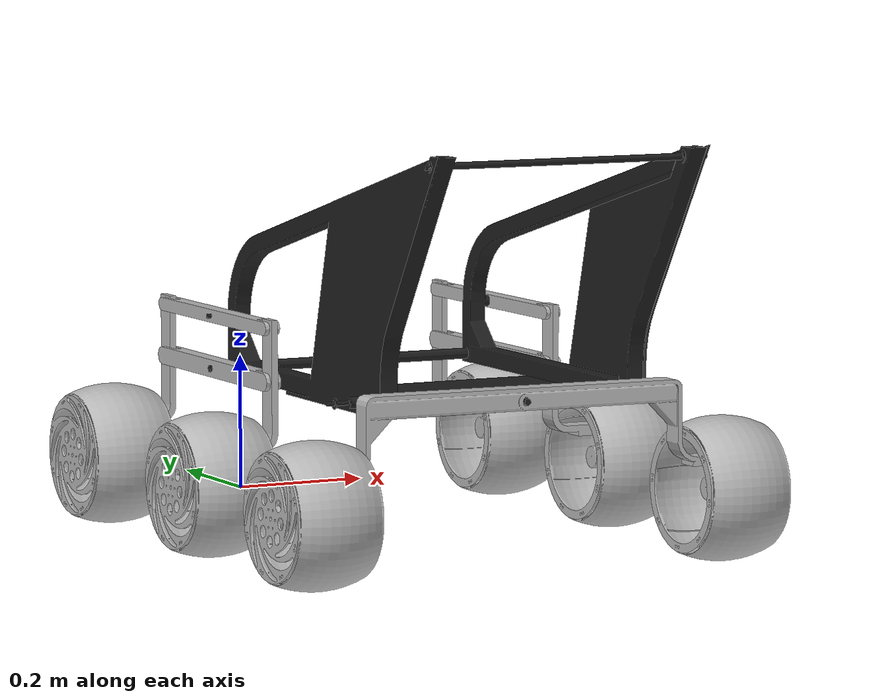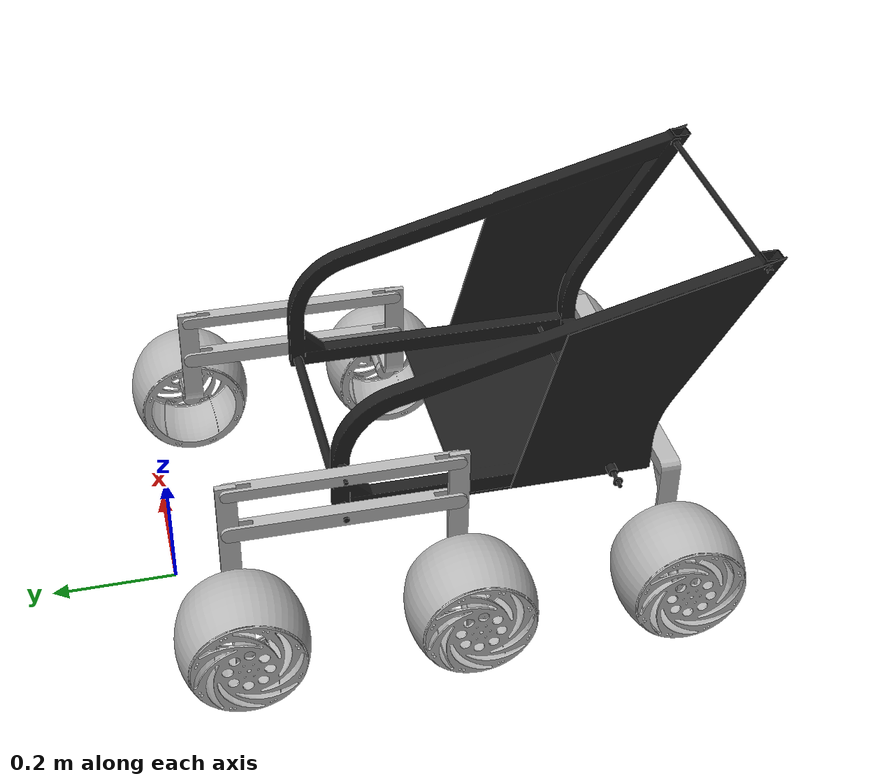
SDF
<?xml version='1.0'?>
<sdf version='1.5'>
  <model name="rmc_robot">
  <static>false</static>
  <link name='base_link'>
      <pose>0 0 0 0 -0 0</pose>
      <inertial>
        <pose>0.0718949 -0.601542 0.318448 0 -0 0</pose>
        <mass>2.92938</mass>
        <inertia>
          <ixx>0.148284</ixx>
          <ixy>7.06981e-05</ixy>
          <ixz>-1.16351e-05</ixz>
          <iyy>0.131066</iyy>
          <iyz>-0.0298493</iyz>
          <izz>0.188823</izz>
        </inertia>
      </inertial>
      <collision name='base_link_collision'>
        <pose>0 0 0 0 -0 0</pose>
        <geometry>
          <mesh>
            <scale>1 1 1</scale>
            <uri>model://rmc_simulation/meshes/base_link.STL</uri>
          </mesh>
        </geometry>
      </collision>
      <visual name='base_link_visual'>
        <pose>0 0 0 0 -0 0</pose>
        <geometry>
          <mesh>
            <scale>1 1 1</scale>
            <uri>model://rmc_simulation/meshes/base_link.STL</uri>
          </mesh>
        </geometry>
	<material>
          <script>
            <uri>file://media/materials/scripts/gazebo.material</uri>
            <name>Gazebo/Black</name>
          </script>
        </material>
      </visual>
      <velocity_decay>
        <linear>0</linear>
        <angular>0</angular>
      </velocity_decay>
    </link>

    <link name='left_bot_link'>
      <pose>-0.140869 -0.255808 0.217656 1.5708 -0 0</pose>
      <inertial>
        <pose>-0.0111125 -2.77556e-17 0 0 -0 0</pose>
        <mass>0.188515</mass>
        <inertia>
          <ixx>0.0019175</ixx>
          <ixy>4.77528e-22</ixy>
          <ixz>1.41435e-20</ixz>
          <iyy>0.00191594</iyy>
          <iyz>4.20247e-21</iyz>
          <izz>1.85554e-05</izz>
        </inertia>
      </inertial>
      <collision name='left_bot_link_collision'>
        <pose>0 0 0 0 -0 0</pose>
        <geometry>
          <mesh>
            <scale>1 1 1</scale>
            <uri>model://rmc_simulation/meshes/left_bot_link.STL</uri>
          </mesh>
        </geometry>
      </collision>
      <visual name='left_bot_link_visual'>
        <pose>0 0 0 0 -0 0</pose>
        <geometry>
          <mesh>
            <scale>1 1 1</scale>
            <uri>model://rmc_simulation/meshes/left_bot_link.STL</uri>
          </mesh>
        </geometry>
      </visual>
      <velocity_decay>
        <linear>0</linear>
        <angular>0</angular>
      </velocity_decay>
    </link>

    <joint name='left_bot_joint' type='revolute'>
      <child>left_bot_link</child>
      <parent>base_link</parent>
      <axis>
        <xyz>-1 0 0</xyz>
        <limit>
          <lower>-1e+16</lower>
          <upper>1e+16</upper>
        </limit>
        <dynamics>
          <spring_reference>0</spring_reference>
          <spring_stiffness>0</spring_stiffness>
        </dynamics>
        <use_parent_model_frame>1</use_parent_model_frame>
      </axis>
    </joint>

    <link name='left_bot_back_link'>
      <pose>-0.163094 -0.433608 0.217656 1.5708 -3.44169e-15 1.5708</pose>
      <inertial>
        <pose>1.92853e-05 -0.0863283 -0.0548204 0 -0 0</pose>
        <mass>0.205852</mass>
        <inertia>
          <ixx>0.00120413</ixx>
          <ixy>-1.40154e-07</ixy>
          <ixz>-1.2706e-07</ixz>
          <iyy>0.000482538</iyy>
          <iyz>0.000461297</iyz>
          <izz>0.000755248</izz>
        </inertia>
      </inertial>
      <collision name='left_bot_back_link_collision'>
        <pose>0 0 0 0 -0 0</pose>
        <geometry>
          <mesh>
            <scale>1 1 1</scale>
            <uri>model://rmc_simulation/meshes/left_bot_back_link.STL</uri>
          </mesh>
        </geometry>
      </collision>
      <visual name='left_bot_back_link_visual'>
        <pose>0 0 0 0 -0 0</pose>
        <geometry>
          <mesh>
            <scale>1 1 1</scale>
            <uri>model://rmc_simulation/meshes/left_bot_back_link.STL</uri>
          </mesh>
        </geometry>
      </visual>
      <velocity_decay>
        <linear>0</linear>
        <angular>0</angular>
      </velocity_decay>
    </link>

    <joint name='left_bot_back_joint' type='revolute'>
      <child>left_bot_back_link</child>
      <parent>left_bot_link</parent>
      <axis>
        <xyz>-1 -3.44169e-15 1.11022e-16</xyz>
        <limit>
          <lower>-1e+16</lower>
          <upper>1e+16</upper>
        </limit>
        <dynamics>
          <spring_reference>0</spring_reference>
          <spring_stiffness>0</spring_stiffness>
        </dynamics>
        <use_parent_model_frame>1</use_parent_model_frame>
      </axis>
    </joint>

<link name='left_mid_wheel_link'>
      <pose>-0.179282 -0.433574 0.077831 0.785403 1.57079 -0.785403</pose>
      <inertial>
        <pose>-7.307e-12 -0.0707952 -1.95886e-07 0 -0 0</pose>
        <mass>0.687646</mass>
        <inertia>
          <ixx>0.00410397</ixx>
          <ixy>1.97154e-13</ixy>
          <ixz>1.06916e-14</ixz>
          <iyy>0.00552463</iyy>
          <iyz>5.39169e-09</iyz>
          <izz>0.00410397</izz>
        </inertia>
      </inertial>
      <collision name='left_mid_wheel_link_collision'>
        <pose>0 0 0 0 -0 0</pose>
        <geometry>
          <mesh>
            <scale>1 1 1</scale>
            <uri>model://rmc_simulation/meshes/left_mid_wheel_link.STL</uri>
          </mesh>
        </geometry>
      </collision>
      <visual name='left_mid_wheel_link_visual'>
        <pose>0 0 0 0 -0 0</pose>
        <geometry>
          <mesh>
            <scale>1 1 1</scale>
            <uri>model://rmc_simulation/meshes/left_mid_wheel_link.STL</uri>
          </mesh>
        </geometry>
      </visual>
      <velocity_decay>
        <linear>0</linear>
        <angular>0</angular>
      </velocity_decay>
    </link>
    <joint name='left_mid_wheel_joint' type='revolute'>
      <child>left_mid_wheel_link</child>
      <parent>left_bot_back_link</parent>
      <axis>
        <xyz>-1 -1.11022e-16 1.11022e-16</xyz>
        <limit>
          <lower>-1e+16</lower>
          <upper>1e+16</upper>
        </limit>
        <dynamics>
          <spring_reference>0</spring_reference>
          <spring_stiffness>0</spring_stiffness>
        </dynamics>
        <use_parent_model_frame>1</use_parent_model_frame>
      </axis>
    </joint>

    <link name='left_bot_front_link'>
      <pose>-0.147219 -0.0780078 0.217656 1.5708 -3.44169e-15 1.5708</pose>
      <inertial>
        <pose>1.92853e-05 -0.0863283 -0.0706954 0 -0 0</pose>
        <mass>0.205852</mass>
        <inertia>
          <ixx>0.00120413</ixx>
          <ixy>-1.40154e-07</ixy>
          <ixz>-1.2706e-07</ixz>
          <iyy>0.000482538</iyy>
          <iyz>0.000461297</iyz>
          <izz>0.000755248</izz>
        </inertia>
      </inertial>
      <collision name='left_bot_front_link_collision'>
        <pose>0 0 0 0 -0 0</pose>
        <geometry>
          <mesh>
            <scale>1 1 1</scale>
            <uri>model://rmc_simulation/meshes/left_bot_front_link.STL</uri>
          </mesh>
        </geometry>
      </collision>
      <visual name='left_bot_front_link_visual'>
        <pose>0 0 0 0 -0 0</pose>
        <geometry>
          <mesh>
            <scale>1 1 1</scale>
            <uri>model://rmc_simulation/meshes/left_bot_front_link.STL</uri>
          </mesh>
        </geometry>
      </visual>
      <velocity_decay>
        <linear>0</linear>
        <angular>0</angular>
      </velocity_decay>
    </link>
    <joint name='left_bot_front_joiny' type='revolute'>
      <child>left_bot_front_link</child>
      <parent>left_bot_link</parent>
      <axis>
        <xyz>-1 -3.44169e-15 1.11022e-16</xyz>
        <limit>
          <lower>-1e+16</lower>
          <upper>1e+16</upper>
        </limit>
        <dynamics>
          <spring_reference>0</spring_reference>
          <spring_stiffness>0</spring_stiffness>
        </dynamics>
        <use_parent_model_frame>1</use_parent_model_frame>
      </axis>
    </joint>

    <link name='left_front_wheel_link'>
      <pose>-0.179282 -0.077974 0.077831 0.785403 1.57079 -0.785403</pose>
      <inertial>
        <pose>-7.30697e-12 -0.0707952 -1.95886e-07 0 -0 0</pose>
        <mass>0.687646</mass>
        <inertia>
          <ixx>0.00410397</ixx>
          <ixy>1.97154e-13</ixy>
          <ixz>1.06921e-14</ixz>
          <iyy>0.00552463</iyy>
          <iyz>5.39169e-09</iyz>
          <izz>0.00410397</izz>
        </inertia>
      </inertial>
      <collision name='left_front_wheel_link_collision'>
        <pose>0 0 0 0 -0 0</pose>
        <geometry>
          <mesh>
            <scale>1 1 1</scale>
            <uri>model://rmc_simulation/meshes/left_front_wheel_link.STL</uri>
          </mesh>
        </geometry>
      </collision>
      <visual name='left_front_wheel_link_visual'>
        <pose>0 0 0 0 -0 0</pose>
        <geometry>
          <mesh>
            <scale>1 1 1</scale>
            <uri>model://rmc_simulation/meshes/left_front_wheel_link.STL</uri>
          </mesh>
        </geometry>
      </visual>
      <velocity_decay>
        <linear>0</linear>
        <angular>0</angular>
      </velocity_decay>
    </link>
    <joint name='left_front_wheel_joint' type='revolute'>
      <child>left_front_wheel_link</child>
      <parent>left_bot_front_link</parent>
      <axis>
        <xyz>-1 -1.11022e-16 1.11022e-16</xyz>
        <limit>
          <lower>-1e+16</lower>
          <upper>1e+16</upper>
        </limit>
        <dynamics>
          <spring_reference>0</spring_reference>
          <spring_stiffness>0</spring_stiffness>
        </dynamics>
        <use_parent_model_frame>1</use_parent_model_frame>
      </axis>
    </joint>

    <link name='left_top_link'>
      <pose>-0.140869 -0.255808 0.293856 1.5708 -0 0</pose>
      <inertial>
        <pose>-0.0111125 -5.55112e-17 0 0 -0 0</pose>
        <mass>0.140249</mass>
        <inertia>
          <ixx>0.00137938</ixx>
          <ixy>-1.28023e-22</ixy>
          <ixz>7.25851e-21</ixz>
          <iyy>0.00138148</iyy>
          <iyz>4.32209e-22</iyz>
          <izz>1.05254e-05</izz>
        </inertia>
      </inertial>
      <collision name='left_top_link_collision'>
        <pose>0 0 0 0 -0 0</pose>
        <geometry>
          <mesh>
            <scale>1 1 1</scale>
            <uri>model://rmc_simulation/meshes/left_top_link.STL</uri>
          </mesh>
        </geometry>
      </collision>
      <visual name='left_top_link_visual'>
        <pose>0 0 0 0 -0 0</pose>
        <geometry>
          <mesh>
            <scale>1 1 1</scale>
            <uri>model://rmc_simulation/meshes/left_top_link.STL</uri>
          </mesh>
        </geometry>
      </visual>
      <velocity_decay>
        <linear>0</linear>
        <angular>0</angular>
      </velocity_decay>
    </link>
    <joint name='left_top_joint' type='revolute'>
      <child>left_top_link</child>
      <parent>base_link</parent>
      <axis>
        <xyz>-1 0 0</xyz>
        <limit>
          <lower>-1e+16</lower>
          <upper>1e+16</upper>
        </limit>
        <dynamics>
          <spring_reference>0</spring_reference>
          <spring_stiffness>0</spring_stiffness>
        </dynamics>
        <use_parent_model_frame>1</use_parent_model_frame>
      </axis>
    </joint>

    <joint name='left_top_back_joint' type='revolute'>
      <child>left_bot_back_link</child>
      <parent>left_top_link</parent>
      <pose>0 0.0762 0 0 0 0</pose>
      <axis>
        <xyz>-1 -3.44169e-15 1.11022e-16</xyz>
        <limit>
          <lower>-1e+16</lower>
          <upper>1e+16</upper>
        </limit>
        <dynamics>
          <spring_reference>0</spring_reference>
          <spring_stiffness>0</spring_stiffness>
        </dynamics>
        <use_parent_model_frame>1</use_parent_model_frame>
      </axis>
    </joint>

<joint name='left_top_front_joint' type='revolute'>
      <child>left_bot_front_link</child>
      <parent>left_top_link</parent>
      <pose> 0 0.0762 0 0 0 0 </pose>
      <axis>
        <xyz>-1 -3.44169e-15 1.11022e-16</xyz>
        <limit>
          <lower>-1e+16</lower>
          <upper>1e+16</upper>
        </limit>
        <dynamics>
          <spring_reference>0</spring_reference>
          <spring_stiffness>0</spring_stiffness>
        </dynamics>
        <use_parent_model_frame>1</use_parent_model_frame>
      </axis>
    </joint>
<!-- END OF LEFT ROCKER OMFG YESSSSSSSS -->

    <link name='rear_rocker_link'>
      <pose>0.0718557 -0.753477 0.217656 1.5708 0.0049569 4.33686e-19</pose>
      <inertial>
        <pose>0.000471477 -0.0411046 0.0167425 0 -0 0</pose>
        <mass>0.807447</mass>
        <inertia>
          <ixx>0.00288386</ixx>
          <ixy>-1.8321e-05</ixy>
          <ixz>-8.95563e-08</ixz>
          <iyy>0.0397756</iyy>
          <iyz>3.03268e-06</iyz>
          <izz>0.0425282</izz>
        </inertia>
      </inertial>
      <collision name='rear_rocker_link_collision'>
        <pose>0 0 0 0 -0 0</pose>
        <geometry>
          <mesh>
            <scale>1 1 1</scale>
            <uri>model://rmc_simulation/meshes/rear_rocker_link.STL</uri>
          </mesh>
        </geometry>
      </collision>
      <visual name='rear_rocker_link_visual'>
        <pose>0 0 0 0 -0 0</pose>
        <geometry>
          <mesh>
            <scale>1 1 1</scale>
            <uri>model://rmc_simulation/meshes/rear_rocker_link.STL</uri>
          </mesh>
        </geometry>
      </visual>
      <velocity_decay>
        <linear>0</linear>
        <angular>0</angular>
      </velocity_decay>
    </link>
    <joint name='rear_rocker_joint' type='revolute'>
      <child>rear_rocker_link</child>
      <parent>base_link</parent>
      <axis>
        <xyz>1.73472e-17 1 3.44167e-15</xyz>
        <limit>
          <lower>-1e+16</lower>
          <upper>1e+16</upper>
        </limit>
        <dynamics>
          <spring_reference>0</spring_reference>
          <spring_stiffness>0</spring_stiffness>
        </dynamics>
        <use_parent_model_frame>1</use_parent_model_frame>
      </axis>
    </joint>
<!-- END OF REAR ROCKER -->

    <link name='left_back_wheel_link'>
      <pose>-0.180876 -0.770124 0.0791455 -1.5708 1.56584 3.14159</pose>
      <inertial>
        <pose>-7.71942e-12 -0.070792 -1.95887e-07 0 -0 0</pose>
        <mass>0.687646</mass>
        <inertia>
          <ixx>0.00410397</ixx>
          <ixy>2.09611e-13</ixy>
          <ixz>1.05878e-14</ixz>
          <iyy>0.00552463</iyy>
          <iyz>5.39171e-09</iyz>
          <izz>0.00410397</izz>
        </inertia>
      </inertial>
      <collision name='left_back_wheel_link_collision'>
        <pose>0 0 0 0 -0 0</pose>
        <geometry>
          <mesh>
            <scale>1 1 1</scale>
            <uri>model://rmc_simulation/meshes/left_back_wheel_link.STL</uri>
          </mesh>
        </geometry>
      </collision>
      <visual name='left_back_wheel_link_visual'>
        <pose>0 0 0 0 -0 0</pose>
        <geometry>
          <mesh>
            <scale>1 1 1</scale>
            <uri>model://rmc_simulation/meshes/left_back_wheel_link.STL</uri>
          </mesh>
        </geometry>
      </visual>
      <velocity_decay>
        <linear>0</linear>
        <angular>0</angular>
      </velocity_decay>
    </link>
    <joint name='left_back_wheel_joint' type='revolute'>
      <child>left_back_wheel_link</child>
      <parent>rear_rocker_link</parent>
      <axis>
        <xyz>-0.999988 -1.11022e-16 0.00495688</xyz>
        <limit>
          <lower>-1e+16</lower>
          <upper>1e+16</upper>
        </limit>
        <dynamics>
          <spring_reference>0</spring_reference>
          <spring_stiffness>0</spring_stiffness>
        </dynamics>
        <use_parent_model_frame>1</use_parent_model_frame>
      </axis>
    </joint>

    <link name='right_back_wheel_link'>
      <pose>0.323202 -0.770124 0.0766469 3.13028 -1.11702 -1.56063</pose>
      <inertial>
        <pose>-2.56872e-12 -0.070792 -1.95886e-07 0 -0 0</pose>
        <mass>0.687646</mass>
        <inertia>
          <ixx>0.00410397</ixx>
          <ixy>7.41436e-14</ixy>
          <ixz>7.32563e-15</ixz>
          <iyy>0.00552463</iyy>
          <iyz>5.3917e-09</iyz>
          <izz>0.00410397</izz>
        </inertia>
      </inertial>
      <collision name='right_back_wheel_link_collision'>
        <pose>0 0 0 0 -0 0</pose>
        <geometry>
          <mesh>
            <scale>1 1 1</scale>
            <uri>model://rmc_simulation/meshes/right_back_wheel_link.STL</uri>
          </mesh>
        </geometry>
      </collision>
      <visual name='right_back_wheel_link_visual'>
        <pose>0 0 0 0 -0 0</pose>
        <geometry>
          <mesh>
            <scale>1 1 1</scale>
            <uri>model://rmc_simulation/meshes/right_back_wheel_link.STL</uri>
          </mesh>
        </geometry>
      </visual>
      <velocity_decay>
        <linear>0</linear>
        <angular>0</angular>
      </velocity_decay>
    </link>
    <joint name='right_back_wheel_joint' type='revolute'>
      <child>right_back_wheel_link</child>
      <parent>rear_rocker_link</parent>
      <axis>
        <xyz>-0.999988 -2.77556e-17 0.00495688</xyz>
        <limit>
          <lower>-1e+16</lower>
          <upper>1e+16</upper>
        </limit>
        <dynamics>
          <spring_reference>0</spring_reference>
          <spring_stiffness>0</spring_stiffness>
        </dynamics>
        <use_parent_model_frame>1</use_parent_model_frame>
      </axis>
    </joint>

    <link name='right_bot_link'>
      <pose>0.284581 -0.255808 0.217656 1.5708 -0 0</pose>
      <inertial>
        <pose>0.0111125 2.77556e-17 0 0 -0 0</pose>
        <mass>0.188515</mass>
        <inertia>
          <ixx>0.0019175</ixx>
          <ixy>-7.07169e-22</ixy>
          <ixz>-9.82756e-21</ixz>
          <iyy>0.00191594</iyy>
          <iyz>-2.59046e-07</iyz>
          <izz>1.85554e-05</izz>
        </inertia>
      </inertial>
      <collision name='right_bot_link_collision'>
        <pose>0 0 0 0 -0 0</pose>
        <geometry>
          <mesh>
            <scale>1 1 1</scale>
            <uri>model://rmc_simulation/meshes/right_bot_link.STL</uri>
          </mesh>
        </geometry>
      </collision>
      <visual name='right_bot_link_visual'>
        <pose>0 0 0 0 -0 0</pose>
        <geometry>
          <mesh>
            <scale>1 1 1</scale>
            <uri>model://rmc_simulation/meshes/right_bot_link.STL</uri>
          </mesh>
        </geometry>
      </visual>
      <velocity_decay>
        <linear>0</linear>
        <angular>0</angular>
      </velocity_decay>
    </link>
    <joint name='right_bot_joint' type='revolute'>
      <child>right_bot_link</child>
      <parent>base_link</parent>
      <axis>
        <xyz>-1 0 0</xyz>
        <limit>
          <lower>-1e+16</lower>
          <upper>1e+16</upper>
        </limit>
        <dynamics>
          <spring_reference>0</spring_reference>
          <spring_stiffness>0</spring_stiffness>
        </dynamics>
        <use_parent_model_frame>1</use_parent_model_frame>
      </axis>
    </joint>
<!-- negate the roll value. swithc the angle. check right mid wheel -->
    <link name='right_bot_back_link'>
      <pose>0.290931 -0.433608 0.207632 -1.5708 3.44169e-15 -1.5708</pose>
      <inertial>
        <pose>1.92853e-05 0.0763283 0.0706954 0 -0 0</pose>
        <mass>0.205852</mass>
        <inertia>
          <ixx>0.00120413</ixx>
          <ixy>1.40154e-07</ixy>
          <ixz>1.2706e-07</ixz>
          <iyy>0.000482538</iyy>
          <iyz>0.000461297</iyz>
          <izz>0.000755248</izz>
        </inertia>
      </inertial>
      <collision name='right_bot_back_link_collision'>
        <pose>0 0 0 0 -0 0</pose>
        <geometry>
          <mesh>
            <scale>1 1 1</scale>
            <uri>model://rmc_simulation/meshes/right_bot_back_link.STL</uri>
          </mesh>
        </geometry>
      </collision>
      <visual name='right_bot_back_link_visual'>
        <pose>0 0 0 0 -0 0</pose>
        <geometry>
          <mesh>
            <scale>1 1 1</scale>
            <uri>model://rmc_simulation/meshes/right_bot_back_link.STL</uri>
          </mesh>
        </geometry>
      </visual>
      <velocity_decay>
        <linear>0</linear>
        <angular>0</angular>
      </velocity_decay>
    </link>
    <joint name='right_bot_back_link' type='revolute'>
      <child>right_bot_back_link</child>
      <parent>right_bot_link</parent>
      <axis>
        <xyz>1 -3.44169e-15 1.11022e-16</xyz>
        <limit>
          <lower>-1e+16</lower>
          <upper>1e+16</upper>
        </limit>
        <dynamics>
          <spring_reference>0</spring_reference>
          <spring_stiffness>0</spring_stiffness>
        </dynamics>
        <use_parent_model_frame>1</use_parent_model_frame>
      </axis>
    </joint>

    <link name='right_mid_wheel_link'>
      <pose>0.323202 -0.433642 0.0766469 -2.65358e-06 1.57079 1.57079</pose>
      <inertial>
        <pose>-7.30706e-12 -0.0807952 -1.95886e-07 0 -0 0</pose>
        <mass>0.687646</mass>
        <inertia>
          <ixx>0.00410397</ixx>
          <ixy>1.97149e-13</ixy>
          <ixz>1.06927e-14</ixz>
          <iyy>0.00552463</iyy>
          <iyz>5.39169e-09</iyz>
          <izz>0.00410397</izz>
        </inertia>
      </inertial>
      <collision name='right_mid_wheel_link_collision'>
        <pose>0 0 0 0 -0 0</pose>
        <geometry>
          <mesh>
            <scale>1 1 1</scale>
            <uri>model://rmc_simulation/meshes/right_mid_wheel_link.STL</uri>
          </mesh>
        </geometry>
      </collision>
      <visual name='right_mid_wheel_link_visual'>
        <pose>0 0 0 0 -0 0</pose>
        <geometry>
          <mesh>
            <scale>1 1 1</scale>
            <uri>model://rmc_simulation/meshes/right_mid_wheel_link.STL</uri>
          </mesh>
        </geometry>
      </visual>
      <velocity_decay>
        <linear>0</linear>
        <angular>0</angular>
      </velocity_decay>
    </link>
    <joint name='right_mid_wheel_link' type='revolute'>
      <child>right_mid_wheel_link</child>
      <parent>right_bot_back_link</parent>
      <axis>
        <xyz>1 0 0</xyz>
        <limit>
          <lower>-1e+16</lower>
          <upper>1e+16</upper>
        </limit>
        <dynamics>
          <spring_reference>0</spring_reference>
          <spring_stiffness>0</spring_stiffness>
        </dynamics>
        <use_parent_model_frame>1</use_parent_model_frame>
      </axis>
    </joint>

<!-- Had to negate the roll angle value to make it turn around. Check the right front wheel -->
    <link name='right_bot_front_link'>
      <pose>0.290931 -0.0780078 0.217656 -1.5708 3.44169e-15 -1.5708</pose>
      <inertial>
        <pose>-4.78511e-05 0.0863041 0.0706954 0 -0 0</pose>
        <mass>0.205852</mass>
        <inertia>
          <ixx>0.00120413</ixx>
          <ixy>-4.2103e-07</ixy>
          <ixz>-2.31693e-07</ixz>
          <iyy>0.000482538</iyy>
          <iyz>0.000461297</iyz>
          <izz>0.000755248</izz>
        </inertia>
      </inertial>
      <collision name='right_bot_front_link_collision'>
        <pose>0 0 0 0 -0 0</pose>
        <geometry>
          <mesh>
            <scale>1 1 1</scale>
            <uri>model://rmc_simulation/meshes/right_bot_front_link.STL</uri>
          </mesh>
        </geometry>
      </collision>
      <visual name='right_bot_front_link_visual'>
        <pose>0 0 0 0 -0 0</pose>
        <geometry>
          <mesh>
            <scale>1 1 1</scale>
            <uri>model://rmc_simulation/meshes/right_bot_front_link.STL</uri>
          </mesh>
        </geometry>
      </visual>
      <velocity_decay>
        <linear>0</linear>
        <angular>0</angular>
      </velocity_decay>
    </link>
    <joint name='right_bot_front_joint' type='revolute'>
      <child>right_bot_front_link</child>
      <parent>right_bot_link</parent>
      <axis>
        <xyz>1 -3.44169e-15 1.11022e-16</xyz>
        <limit>
          <lower>-1e+16</lower>
          <upper>1e+16</upper>
        </limit>
        <dynamics>
          <spring_reference>0</spring_reference>
          <spring_stiffness>0</spring_stiffness>
        </dynamics>
        <use_parent_model_frame>1</use_parent_model_frame>
      </axis>
    </joint>

    <link name='right_front_wheel_link'>
      <pose>0.323202 -0.0779328 0.0766469 -5.12491e-14 1.56863 1.5708</pose>
      <inertial>
        <pose>-7.19148e-12 -0.0807952 -1.95886e-07 0 -0 0</pose>
        <mass>0.687646</mass>
        <inertia>
          <ixx>0.00410397</ixx>
          <ixy>1.94069e-13</ixy>
          <ixz>1.05931e-14</ixz>
          <iyy>0.00552463</iyy>
          <iyz>5.39169e-09</iyz>
          <izz>0.00410397</izz>
        </inertia>
      </inertial>
      <collision name='right_front_wheel_link_collision'>
        <pose>0 0 0 0 -0 0</pose>
        <geometry>
          <mesh>
            <scale>1 1 1</scale>
            <uri>model://rmc_simulation/meshes/right_front_wheel_link.STL</uri>
          </mesh>
        </geometry>
      </collision>
      <visual name='right_front_wheel_link_visual'>
        <pose>0 0 0 0 -0 0</pose>
        <geometry>
          <mesh>
            <scale>1 1 1</scale>
            <uri>model://rmc_simulation/meshes/right_front_wheel_link.STL</uri>
          </mesh>
        </geometry>
      </visual>
      <velocity_decay>
        <linear>0</linear>
        <angular>0</angular>
      </velocity_decay>
    </link>
    <joint name='right_front_wheel_joint' type='revolute'>
      <child>right_front_wheel_link</child>
      <parent>right_bot_front_link</parent>
      <axis>
        <xyz>1 -5.55112e-17 5.55112e-17</xyz>
        <limit>
          <lower>-1e+16</lower>
          <upper>1e+16</upper>
        </limit>
        <dynamics>
          <spring_reference>0</spring_reference>
          <spring_stiffness>0</spring_stiffness>
        </dynamics>
        <use_parent_model_frame>1</use_parent_model_frame>
      </axis>
    </joint>

    <link name='right_top_link'>
      <pose>0.284581 -0.255808 0.293856 1.5708 -0 0</pose>
      <inertial>
        <pose>0.0111125 0 -5.55112e-17 0 -0 0</pose>
        <mass>0.140249</mass>
        <inertia>
          <ixx>0.00137938</ixx>
          <ixy>-1.37422e-22</ixy>
          <ixz>-1.023e-20</ixz>
          <iyy>0.00138148</iyy>
          <iyz>2.95551e-21</iyz>
          <izz>1.05254e-05</izz>
        </inertia>
      </inertial>
      <collision name='right_top_link_collision'>
        <pose>0 0 0 0 -0 0</pose>
        <geometry>
          <mesh>
            <scale>1 1 1</scale>
            <uri>model://rmc_simulation/meshes/right_top_link.STL</uri>
          </mesh>
        </geometry>
      </collision>
      <visual name='right_top_link_visual'>
        <pose>0 0 0 0 -0 0</pose>
        <geometry>
          <mesh>
            <scale>1 1 1</scale>
            <uri>model://rmc_simulation/meshes/right_top_link.STL</uri>
          </mesh>
        </geometry>
      </visual>
      <velocity_decay>
        <linear>0</linear>
        <angular>0</angular>
      </velocity_decay>
    </link>
    <joint name='right_top_joint' type='revolute'>
      <child>right_top_link</child>
      <parent>base_link</parent>
      <axis>
        <xyz>-1 0 0</xyz>
        <limit>
          <lower>-1e+16</lower>
          <upper>1e+16</upper>
        </limit>
        <dynamics>
          <spring_reference>0</spring_reference>
          <spring_stiffness>0</spring_stiffness>
        </dynamics>
        <use_parent_model_frame>1</use_parent_model_frame>
      </axis>
    </joint>

    <joint name='right_top_back_joint' type='revolute'>
      <child>right_bot_back_link</child>
      <parent>right_top_link</parent>
      <pose>0 -0.087 0 0 0 0 </pose>
      <axis>
        <xyz>1 -3.44169e-15 1.11022e-16</xyz>
        <limit>
          <lower>-1e+16</lower>
          <upper>1e+16</upper>
        </limit>
        <dynamics>
          <spring_reference>0</spring_reference>
          <spring_stiffness>0</spring_stiffness>
        </dynamics>
        <use_parent_model_frame>1</use_parent_model_frame>
      </axis>
    </joint>

<joint name='right_top_front_joint' type='revolute'>
      <child>right_bot_front_link</child>
      <parent>right_top_link</parent>
      <pose>0 -0.087 0 0 0 0 </pose>
      <axis>
        <xyz>1 -3.44169e-15 1.11022e-16</xyz>
        <limit>
          <lower>-1e+16</lower>
          <upper>1e+16</upper>
        </limit>
        <dynamics>
          <spring_reference>0</spring_reference>
          <spring_stiffness>0</spring_stiffness>
        </dynamics>
        <use_parent_model_frame>1</use_parent_model_frame>
      </axis>
    </joint>

  </model>
</sdf>
